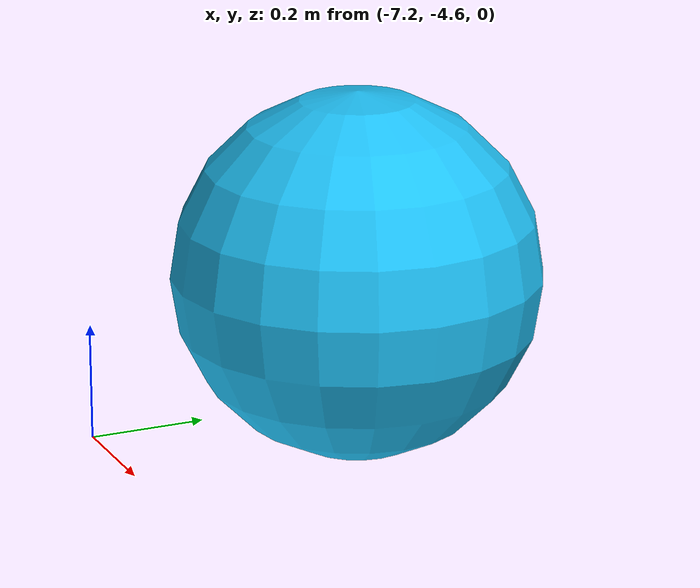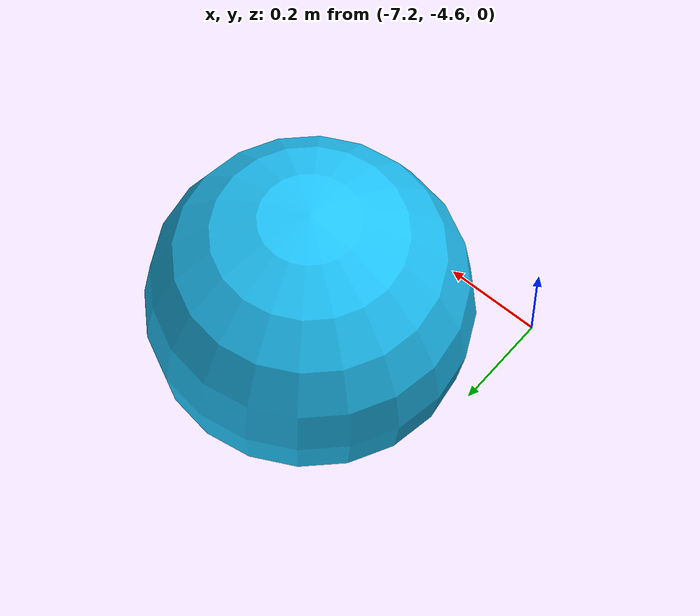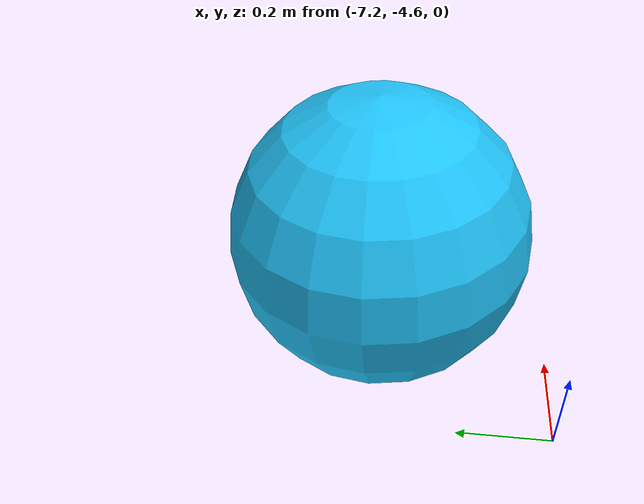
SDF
<sdf version="1.9">
 <world name="default">
  <model name="ground_plane">
   <static>true</static>
   <link name="link">
    <collision name="collision">
     <geometry><plane><normal>0 0 1</normal><size>100 100</size></plane></geometry>
    </collision>
   </link>
  </model>
  <model name="Ball_01_003">
   <static>true</static>
   <include><uri>model://aws_robomaker_residential_Ball_01</uri></include>
   <pose>-6.945503 -4.22174 0.318684 0 -0 0</pose>
  </model>
 </world>
</sdf>
